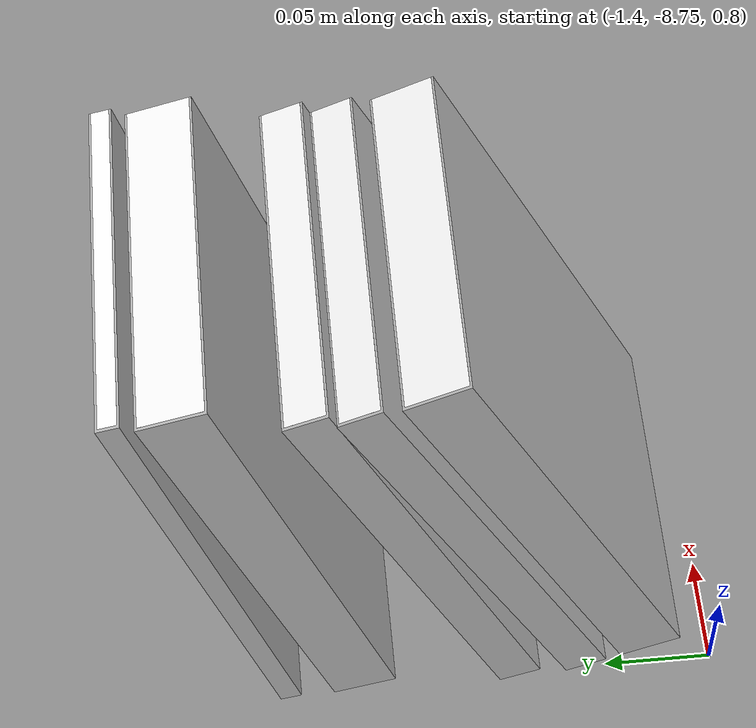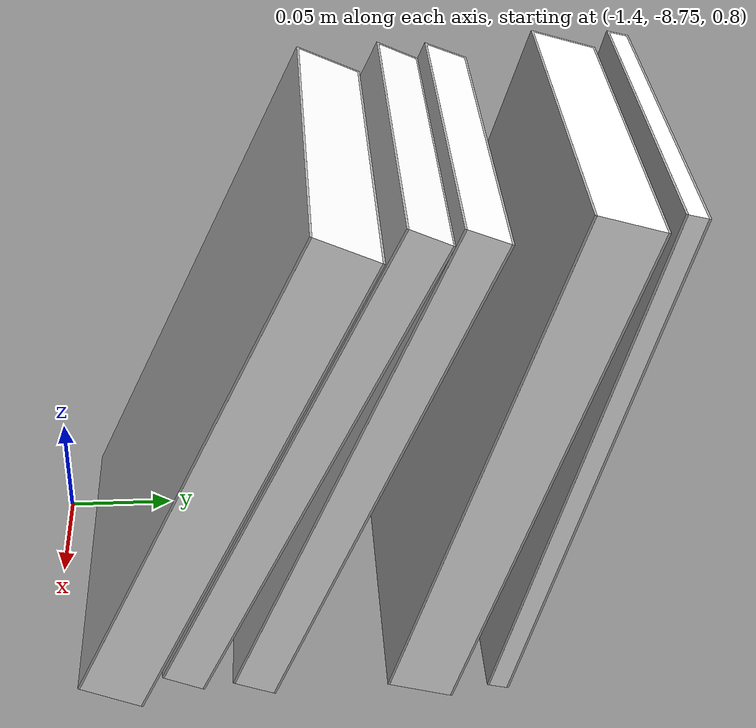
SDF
<sdf version="1.7">
 <world name="default">
  <model name="ground_plane">
   <static>1</static>
   <link name="link">
    <collision name="collision">
     <geometry><plane><normal>0 0 1</normal><size>100 100</size></plane></geometry>
     <surface><friction><ode><mu>1</mu><mu2>1</mu2></ode></friction></surface>
    </collision>
    <visual name="visual">
     <cast_shadows>0</cast_shadows>
     <geometry><plane><normal>0 0 1</normal><size>100 100</size></plane></geometry>
     <material>
      <script><uri>file://media/materials/scripts/gazebo.material</uri><name>Gazebo/Grey</name></script>
     </material>
    </visual>
    <velocity_decay><linear>0</linear><angular>0</angular></velocity_decay>
   </link>
  </model>
  <model name="book_21">
   <link name="cover">
    <pose>0 -0.000108 0.005 0 -0 0</pose>
    <visual name="visual">
     <geometry><box><size>0.245 0.16 0.01</size></box></geometry>
     <material>
      <script>
       <uri>model://book_21/materials/scripts</uri>
       <uri>model://book_21/materials/textures</uri>
       <name>book_21</name>
      </script>
     </material>
    </visual>
    <collision name="collision"><geometry><box><size>0.245 0.16 0.01</size></box></geometry></collision>
   </link>
   <link name="page">
    <pose>0 0.000608 0.005 0 -0 0</pose>
    <visual name="visual">
     <geometry><box><size>0.24502 0.15862 0.008</size></box></geometry>
     <material>
      <lighting>1</lighting>
      <ambient>1 1 1 1</ambient>
      <diffuse>1 1 1 1</diffuse>
      <specular>0.01 0.01 0.01 1</specular>
      <emissive>0 0 0 1</emissive>
      <shader type="vertex"><normal_map>__default__</normal_map></shader>
     </material>
    </visual>
    <collision name="collision"><geometry><box><size>0.245 0.16 0.008</size></box></geometry></collision>
   </link>
   <static>1</static>
   <pose>-1.32998 -8.52484 0.933 -3.13832 -1.32475 1.56842</pose>
  </model>
  <model name="book_4">
   <link name="cover">
    <pose>0 -0.000108 0.01 0 -0 0</pose>
    <visual name="visual">
     <geometry><box><size>0.245 0.16 0.02</size></box></geometry>
     <material>
      <script>
       <uri>model://book_4/materials/scripts</uri>
       <uri>model://book_4/materials/textures</uri>
       <name>book_4</name>
      </script>
     </material>
     <cast_shadows>0</cast_shadows>
    </visual>
    <collision name="collision"><geometry><box><size>0.245 0.16 0.02</size></box></geometry></collision>
   </link>
   <link name="page">
    <pose>0 0.000608 0.01 0 -0 0</pose>
    <visual name="visual">
     <geometry><box><size>0.24502 0.15862 0.018</size></box></geometry>
     <material>
      <lighting>1</lighting>
      <ambient>1 1 1 1</ambient>
      <diffuse>1 1 1 1</diffuse>
      <specular>0.01 0.01 0.01 1</specular>
      <emissive>0 0 0 1</emissive>
      <shader type="vertex"><normal_map>__default__</normal_map></shader>
     </material>
     <cast_shadows>0</cast_shadows>
    </visual>
    <collision name="collision"><geometry><box><size>0.245 0.16 0.018</size></box></geometry></collision>
   </link>
   <static>1</static>
   <pose>-1.33002 -8.62073 0.934243 -3.13946 -1.18764 1.56962</pose>
  </model>
  <model name="book_16_0">
   <link name="cover">
    <pose>0 -0.000108 0.015405 0 -0 0</pose>
    <visual name="visual">
     <geometry><box><size>0.245 0.16 0.03</size></box></geometry>
     <material>
      <script>
       <uri>model://book_16/materials/scripts</uri>
       <uri>model://book_16/materials/textures</uri>
       <name>book_16</name>
      </script>
     </material>
    </visual>
    <collision name="collision"><geometry><box><size>0.245 0.16 0.03</size></box></geometry></collision>
   </link>
   <link name="page">
    <pose>0 0.000608 0.015405 0 -0 0</pose>
    <visual name="visual">
     <geometry><box><size>0.24502 0.15862 0.028</size></box></geometry>
     <material>
      <lighting>1</lighting>
      <ambient>1 1 1 1</ambient>
      <diffuse>1 1 1 1</diffuse>
      <specular>0.01 0.01 0.01 1</specular>
      <emissive>0 0 0 1</emissive>
      <shader type="vertex"><normal_map>__default__</normal_map></shader>
     </material>
    </visual>
    <collision name="collision"><geometry><box><size>0.245 0.16 0.03</size></box></geometry></collision>
   </link>
   <static>1</static>
   <pose>-1.32786 -8.56422 0.936359 -3.13881 -1.28012 1.56893</pose>
  </model>
  <model name="book_6">
   <link name="cover">
    <pose>0 -0.000108 0.01 0 -0 0</pose>
    <visual name="visual">
     <geometry><box><size>0.245 0.16 0.02</size></box></geometry>
     <material>
      <script>
       <uri>model://book_6/materials/scripts</uri>
       <uri>model://book_6/materials/textures</uri>
       <name>book_6</name>
      </script>
     </material>
    </visual>
    <collision name="collision"><geometry><box><size>0.245 0.16 0.02</size></box></geometry></collision>
   </link>
   <link name="page">
    <pose>0 0.000608 0.01 0 -0 0</pose>
    <visual name="visual">
     <geometry><box><size>0.24502 0.15862 0.018</size></box></geometry>
     <material>
      <lighting>1</lighting>
      <ambient>1 1 1 1</ambient>
      <diffuse>1 1 1 1</diffuse>
      <specular>0.01 0.01 0.01 1</specular>
      <emissive>0 0 0 1</emissive>
      <shader type="vertex"><normal_map>__default__</normal_map></shader>
     </material>
    </visual>
    <collision name="collision"><geometry><box><size>0.245 0.16 0.018</size></box></geometry></collision>
   </link>
   <static>1</static>
   <pose>-1.33004 -8.64658 0.937038 -3.13966 -1.14492 1.56984</pose>
  </model>
  <model name="book_19">
   <link name="cover">
    <pose>0 -0.000108 0.015405 0 -0 0</pose>
    <visual name="visual">
     <geometry><box><size>0.245 0.16 0.03</size></box></geometry>
     <material>
      <script>
       <uri>model://book_19/materials/scripts</uri>
       <uri>model://book_19/materials/textures</uri>
       <name>book_19</name>
      </script>
     </material>
    </visual>
    <collision name="collision"><geometry><box><size>0.245 0.16 0.03</size></box></geometry></collision>
   </link>
   <link name="page">
    <pose>0 0.000608 0.015405 0 -0 0</pose>
    <visual name="visual">
     <geometry><box><size>0.24502 0.15862 0.028</size></box></geometry>
     <material>
      <lighting>1</lighting>
      <ambient>1 1 1 1</ambient>
      <diffuse>1 1 1 1</diffuse>
      <specular>0.01 0.01 0.01 1</specular>
      <emissive>0 0 0 1</emissive>
      <shader type="vertex"><normal_map>__default__</normal_map></shader>
     </material>
    </visual>
    <collision name="collision"><geometry><box><size>0.245 0.16 0.03</size></box></geometry></collision>
   </link>
   <static>1</static>
   <pose>-1.32315 -8.68246 0.939077 -3.13968 -1.14225 1.56985</pose>
  </model>
 </world>
</sdf>
